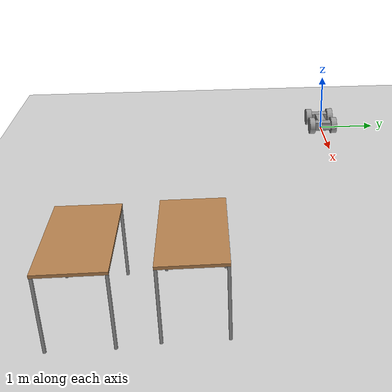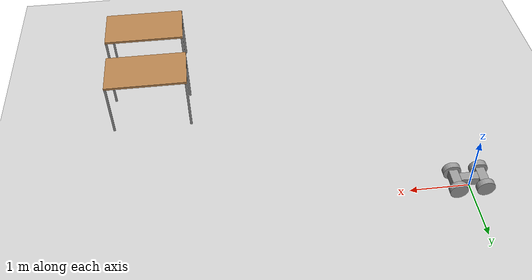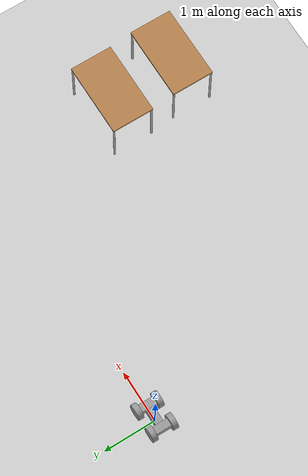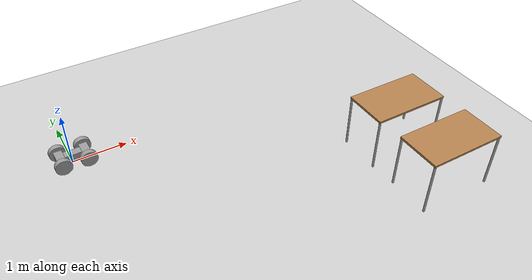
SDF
<sdf version="1.6">
 <world name="default">
  <model name="ground_plane">
   <static>1</static>
   <link name="link">
    <collision name="collision">
     <geometry><plane><normal>0 0 1</normal><size>100 100</size></plane></geometry>
     <surface><friction><ode><mu>100</mu><mu2>50</mu2></ode></friction></surface>
    </collision>
    <visual name="visual">
     <cast_shadows>0</cast_shadows>
     <geometry><plane><normal>0 0 1</normal><size>100 100</size></plane></geometry>
     <material>
      <script><uri>file://media/materials/scripts/gazebo.material</uri><name>Gazebo/Grey</name></script>
     </material>
    </visual>
   </link>
  </model>
  <model name="robot">
   <link name="link_0">
    <pose>-0.225 0 0 0 -0 0</pose>
    <inertial>
     <mass>1</mass>
     <inertia>
      <ixx>0.166667</ixx>
      <ixy>0</ixy>
      <ixz>0</ixz>
      <iyy>0.166667</iyy>
      <iyz>0</iyz>
      <izz>0.166667</izz>
     </inertia>
    </inertial>
    <visual name="visual">
     <geometry><box><size>0.15 0.3 0.15</size></box></geometry>
     <material>
      <lighting>1</lighting>
      <script><uri>file://media/materials/scripts/gazebo.material</uri><name>Gazebo/Grey</name></script>
      <ambient>0.3 0.3 0.3 1</ambient>
      <diffuse>0.7 0.7 0.7 1</diffuse>
      <specular>0.01 0.01 0.01 1</specular>
      <emissive>0 0 0 1</emissive>
      <shader type="vertex"><normal_map>__default__</normal_map></shader>
     </material>
    </visual>
    <collision name="collision">
     <geometry><box><size>0.15 0.3 0.15</size></box></geometry>
     <surface>
      <friction>
       <ode><mu>1</mu><mu2>1</mu2><fdir1>0 0 0</fdir1><slip1>0</slip1><slip2>0</slip2></ode>
       <torsional>
        <coefficient>1</coefficient>
        <patch_radius>0</patch_radius>
        <surface_radius>0</surface_radius>
        <use_patch_radius>1</use_patch_radius>
        <ode><slip>0</slip></ode>
       </torsional>
      </friction>
      <bounce><restitution_coefficient>0</restitution_coefficient><threshold>1e+06</threshold></bounce>
      <contact>
       <collide_without_contact>0</collide_without_contact>
       <collide_without_contact_bitmask>1</collide_without_contact_bitmask>
       <collide_bitmask>1</collide_bitmask>
       <ode>
        <soft_cfm>0</soft_cfm>
        <soft_erp>0.2</soft_erp>
        <kp>1e+13</kp>
        <kd>1</kd>
        <max_vel>0.01</max_vel>
        <min_depth>0</min_depth>
       </ode>
       <bullet>
        <split_impulse>1</split_impulse>
        <split_impulse_penetration_threshold>-0.01</split_impulse_penetration_threshold>
        <soft_cfm>0</soft_cfm>
        <soft_erp>0.2</soft_erp>
        <kp>1e+13</kp>
        <kd>1</kd>
       </bullet>
      </contact>
     </surface>
    </collision>
   </link>
   <link name="link_0_clone">
    <pose>0.225 0 0 0 -0 0</pose>
    <inertial>
     <mass>1</mass>
     <inertia>
      <ixx>0.166667</ixx>
      <ixy>0</ixy>
      <ixz>0</ixz>
      <iyy>0.166667</iyy>
      <iyz>0</iyz>
      <izz>0.166667</izz>
     </inertia>
    </inertial>
    <visual name="visual">
     <geometry><box><size>0.15 0.3 0.15</size></box></geometry>
     <material>
      <lighting>1</lighting>
      <script><uri>file://media/materials/scripts/gazebo.material</uri><name>Gazebo/Grey</name></script>
      <ambient>0.3 0.3 0.3 1</ambient>
      <diffuse>0.7 0.7 0.7 1</diffuse>
      <specular>0.01 0.01 0.01 1</specular>
      <emissive>0 0 0 1</emissive>
      <shader type="vertex"><normal_map>__default__</normal_map></shader>
     </material>
    </visual>
    <collision name="collision">
     <geometry><box><size>0.15 0.3 0.15</size></box></geometry>
     <surface>
      <friction>
       <ode><mu>1</mu><mu2>1</mu2><fdir1>0 0 0</fdir1><slip1>0</slip1><slip2>0</slip2></ode>
       <torsional>
        <coefficient>1</coefficient>
        <patch_radius>0</patch_radius>
        <surface_radius>0</surface_radius>
        <use_patch_radius>1</use_patch_radius>
        <ode><slip>0</slip></ode>
       </torsional>
      </friction>
      <bounce><restitution_coefficient>0</restitution_coefficient><threshold>1e+06</threshold></bounce>
      <contact>
       <collide_without_contact>0</collide_without_contact>
       <collide_without_contact_bitmask>1</collide_without_contact_bitmask>
       <collide_bitmask>1</collide_bitmask>
       <ode>
        <soft_cfm>0</soft_cfm>
        <soft_erp>0.2</soft_erp>
        <kp>1e+13</kp>
        <kd>1</kd>
        <max_vel>0.01</max_vel>
        <min_depth>0</min_depth>
       </ode>
       <bullet>
        <split_impulse>1</split_impulse>
        <split_impulse_penetration_threshold>-0.01</split_impulse_penetration_threshold>
        <soft_cfm>0</soft_cfm>
        <soft_erp>0.2</soft_erp>
        <kp>1e+13</kp>
        <kd>1</kd>
       </bullet>
      </contact>
     </surface>
    </collision>
   </link>
   <link name="link_1">
    <inertial>
     <mass>1</mass>
     <inertia>
      <ixx>0.166667</ixx>
      <ixy>0</ixy>
      <ixz>0</ixz>
      <iyy>0.166667</iyy>
      <iyz>0</iyz>
      <izz>0.166667</izz>
     </inertia>
    </inertial>
    <visual name="visual">
     <geometry><box><size>0.3 0.15 0.15</size></box></geometry>
     <material>
      <lighting>1</lighting>
      <script><uri>file://media/materials/scripts/gazebo.material</uri><name>Gazebo/Grey</name></script>
      <ambient>0.3 0.3 0.3 1</ambient>
      <diffuse>0.7 0.7 0.7 1</diffuse>
      <specular>0.01 0.01 0.01 1</specular>
      <emissive>0 0 0 1</emissive>
      <shader type="vertex"><normal_map>__default__</normal_map></shader>
     </material>
    </visual>
    <collision name="collision">
     <geometry><box><size>0.3 0.15 0.15</size></box></geometry>
     <surface>
      <friction>
       <ode><mu>1</mu><mu2>1</mu2><fdir1>0 0 0</fdir1><slip1>0</slip1><slip2>0</slip2></ode>
       <torsional>
        <coefficient>1</coefficient>
        <patch_radius>0</patch_radius>
        <surface_radius>0</surface_radius>
        <use_patch_radius>1</use_patch_radius>
        <ode><slip>0</slip></ode>
       </torsional>
      </friction>
      <bounce><restitution_coefficient>0</restitution_coefficient><threshold>1e+06</threshold></bounce>
      <contact>
       <collide_without_contact>0</collide_without_contact>
       <collide_without_contact_bitmask>1</collide_without_contact_bitmask>
       <collide_bitmask>1</collide_bitmask>
       <ode>
        <soft_cfm>0</soft_cfm>
        <soft_erp>0.2</soft_erp>
        <kp>1e+13</kp>
        <kd>1</kd>
        <max_vel>0.01</max_vel>
        <min_depth>0</min_depth>
       </ode>
       <bullet>
        <split_impulse>1</split_impulse>
        <split_impulse_penetration_threshold>-0.01</split_impulse_penetration_threshold>
        <soft_cfm>0</soft_cfm>
        <soft_erp>0.2</soft_erp>
        <kp>1e+13</kp>
        <kd>1</kd>
       </bullet>
      </contact>
     </surface>
    </collision>
   </link>
   <link name="link_2">
    <pose>-0.225 -0.200001 0 1.5708 -0 0</pose>
    <inertial>
     <mass>1</mass>
     <inertia><ixx>0.145833</ixx><ixy>0</ixy><ixz>0</ixz><iyy>0.145833</iyy><iyz>0</iyz><izz>0.125</izz></inertia>
    </inertial>
    <visual name="visual">
     <geometry><cylinder><radius>0.15</radius><length>0.1</length></cylinder></geometry>
     <material>
      <lighting>1</lighting>
      <script><uri>file://media/materials/scripts/gazebo.material</uri><name>Gazebo/Grey</name></script>
      <ambient>0.3 0.3 0.3 1</ambient>
      <diffuse>0.7 0.7 0.7 1</diffuse>
      <specular>0.01 0.01 0.01 1</specular>
      <emissive>0 0 0 1</emissive>
      <shader type="vertex"><normal_map>__default__</normal_map></shader>
     </material>
    </visual>
    <collision name="collision">
     <geometry><cylinder><radius>0.15</radius><length>0.1</length></cylinder></geometry>
     <surface>
      <friction>
       <ode><mu>1</mu><mu2>1</mu2><fdir1>0 0 0</fdir1><slip1>0</slip1><slip2>0</slip2></ode>
       <torsional>
        <coefficient>1</coefficient>
        <patch_radius>0</patch_radius>
        <surface_radius>0</surface_radius>
        <use_patch_radius>1</use_patch_radius>
        <ode><slip>0</slip></ode>
       </torsional>
      </friction>
      <bounce><restitution_coefficient>0</restitution_coefficient><threshold>1e+06</threshold></bounce>
      <contact>
       <collide_without_contact>0</collide_without_contact>
       <collide_without_contact_bitmask>1</collide_without_contact_bitmask>
       <collide_bitmask>1</collide_bitmask>
       <ode>
        <soft_cfm>0</soft_cfm>
        <soft_erp>0.2</soft_erp>
        <kp>1e+13</kp>
        <kd>1</kd>
        <max_vel>0.01</max_vel>
        <min_depth>0</min_depth>
       </ode>
       <bullet>
        <split_impulse>1</split_impulse>
        <split_impulse_penetration_threshold>-0.01</split_impulse_penetration_threshold>
        <soft_cfm>0</soft_cfm>
        <soft_erp>0.2</soft_erp>
        <kp>1e+13</kp>
        <kd>1</kd>
       </bullet>
      </contact>
     </surface>
    </collision>
   </link>
   <link name="link_2_clone">
    <pose>0.225 -0.200001 0 1.5708 -0 0</pose>
    <inertial>
     <mass>1</mass>
     <inertia><ixx>0.145833</ixx><ixy>0</ixy><ixz>0</ixz><iyy>0.145833</iyy><iyz>0</iyz><izz>0.125</izz></inertia>
    </inertial>
    <visual name="visual">
     <geometry><cylinder><radius>0.15</radius><length>0.1</length></cylinder></geometry>
     <material>
      <lighting>1</lighting>
      <script><uri>file://media/materials/scripts/gazebo.material</uri><name>Gazebo/Grey</name></script>
      <ambient>0.3 0.3 0.3 1</ambient>
      <diffuse>0.7 0.7 0.7 1</diffuse>
      <specular>0.01 0.01 0.01 1</specular>
      <emissive>0 0 0 1</emissive>
      <shader type="vertex"><normal_map>__default__</normal_map></shader>
     </material>
    </visual>
    <collision name="collision">
     <geometry><cylinder><radius>0.15</radius><length>0.1</length></cylinder></geometry>
     <surface>
      <friction>
       <ode><mu>1</mu><mu2>1</mu2><fdir1>0 0 0</fdir1><slip1>0</slip1><slip2>0</slip2></ode>
       <torsional>
        <coefficient>1</coefficient>
        <patch_radius>0</patch_radius>
        <surface_radius>0</surface_radius>
        <use_patch_radius>1</use_patch_radius>
        <ode><slip>0</slip></ode>
       </torsional>
      </friction>
      <bounce><restitution_coefficient>0</restitution_coefficient><threshold>1e+06</threshold></bounce>
      <contact>
       <collide_without_contact>0</collide_without_contact>
       <collide_without_contact_bitmask>1</collide_without_contact_bitmask>
       <collide_bitmask>1</collide_bitmask>
       <ode>
        <soft_cfm>0</soft_cfm>
        <soft_erp>0.2</soft_erp>
        <kp>1e+13</kp>
        <kd>1</kd>
        <max_vel>0.01</max_vel>
        <min_depth>0</min_depth>
       </ode>
       <bullet>
        <split_impulse>1</split_impulse>
        <split_impulse_penetration_threshold>-0.01</split_impulse_penetration_threshold>
        <soft_cfm>0</soft_cfm>
        <soft_erp>0.2</soft_erp>
        <kp>1e+13</kp>
        <kd>1</kd>
       </bullet>
      </contact>
     </surface>
    </collision>
   </link>
   <link name="link_2_clone_0">
    <pose>-0.225 0.200001 0 1.5708 -0 0</pose>
    <inertial>
     <mass>1</mass>
     <inertia><ixx>0.145833</ixx><ixy>0</ixy><ixz>0</ixz><iyy>0.145833</iyy><iyz>0</iyz><izz>0.125</izz></inertia>
    </inertial>
    <visual name="visual">
     <geometry><cylinder><radius>0.15</radius><length>0.1</length></cylinder></geometry>
     <material>
      <lighting>1</lighting>
      <script><uri>file://media/materials/scripts/gazebo.material</uri><name>Gazebo/Grey</name></script>
      <ambient>0.3 0.3 0.3 1</ambient>
      <diffuse>0.7 0.7 0.7 1</diffuse>
      <specular>0.01 0.01 0.01 1</specular>
      <emissive>0 0 0 1</emissive>
      <shader type="vertex"><normal_map>__default__</normal_map></shader>
     </material>
    </visual>
    <collision name="collision">
     <geometry><cylinder><radius>0.15</radius><length>0.1</length></cylinder></geometry>
     <surface>
      <friction>
       <ode><mu>1</mu><mu2>1</mu2><fdir1>0 0 0</fdir1><slip1>0</slip1><slip2>0</slip2></ode>
       <torsional>
        <coefficient>1</coefficient>
        <patch_radius>0</patch_radius>
        <surface_radius>0</surface_radius>
        <use_patch_radius>1</use_patch_radius>
        <ode><slip>0</slip></ode>
       </torsional>
      </friction>
      <bounce><restitution_coefficient>0</restitution_coefficient><threshold>1e+06</threshold></bounce>
      <contact>
       <collide_without_contact>0</collide_without_contact>
       <collide_without_contact_bitmask>1</collide_without_contact_bitmask>
       <collide_bitmask>1</collide_bitmask>
       <ode>
        <soft_cfm>0</soft_cfm>
        <soft_erp>0.2</soft_erp>
        <kp>1e+13</kp>
        <kd>1</kd>
        <max_vel>0.01</max_vel>
        <min_depth>0</min_depth>
       </ode>
       <bullet>
        <split_impulse>1</split_impulse>
        <split_impulse_penetration_threshold>-0.01</split_impulse_penetration_threshold>
        <soft_cfm>0</soft_cfm>
        <soft_erp>0.2</soft_erp>
        <kp>1e+13</kp>
        <kd>1</kd>
       </bullet>
      </contact>
     </surface>
    </collision>
   </link>
   <link name="link_2_clone_1">
    <pose>0.225 0.200001 0 1.5708 -0 0</pose>
    <inertial>
     <mass>1</mass>
     <inertia><ixx>0.145833</ixx><ixy>0</ixy><ixz>0</ixz><iyy>0.145833</iyy><iyz>0</iyz><izz>0.125</izz></inertia>
    </inertial>
    <visual name="visual">
     <geometry><cylinder><radius>0.15</radius><length>0.1</length></cylinder></geometry>
     <material>
      <lighting>1</lighting>
      <script><uri>file://media/materials/scripts/gazebo.material</uri><name>Gazebo/Grey</name></script>
      <ambient>0.3 0.3 0.3 1</ambient>
      <diffuse>0.7 0.7 0.7 1</diffuse>
      <specular>0.01 0.01 0.01 1</specular>
      <emissive>0 0 0 1</emissive>
      <shader type="vertex"><normal_map>__default__</normal_map></shader>
     </material>
    </visual>
    <collision name="collision">
     <geometry><cylinder><radius>0.15</radius><length>0.1</length></cylinder></geometry>
     <surface>
      <friction>
       <ode><mu>1</mu><mu2>1</mu2><fdir1>0 0 0</fdir1><slip1>0</slip1><slip2>0</slip2></ode>
       <torsional>
        <coefficient>1</coefficient>
        <patch_radius>0</patch_radius>
        <surface_radius>0</surface_radius>
        <use_patch_radius>1</use_patch_radius>
        <ode><slip>0</slip></ode>
       </torsional>
      </friction>
      <bounce><restitution_coefficient>0</restitution_coefficient><threshold>1e+06</threshold></bounce>
      <contact>
       <collide_without_contact>0</collide_without_contact>
       <collide_without_contact_bitmask>1</collide_without_contact_bitmask>
       <collide_bitmask>1</collide_bitmask>
       <ode>
        <soft_cfm>0</soft_cfm>
        <soft_erp>0.2</soft_erp>
        <kp>1e+13</kp>
        <kd>1</kd>
        <max_vel>0.01</max_vel>
        <min_depth>0</min_depth>
       </ode>
       <bullet>
        <split_impulse>1</split_impulse>
        <split_impulse_penetration_threshold>-0.01</split_impulse_penetration_threshold>
        <soft_cfm>0</soft_cfm>
        <soft_erp>0.2</soft_erp>
        <kp>1e+13</kp>
        <kd>1</kd>
       </bullet>
      </contact>
     </surface>
    </collision>
   </link>
   <joint name="link_0_JOINT_1" type="fixed">
    <parent>link_0</parent>
    <child>link_1</child>
    <physics>
     <ode><limit><cfm>0</cfm><erp>0.2</erp></limit><suspension><cfm>0</cfm><erp>0.2</erp></suspension></ode>
    </physics>
   </joint>
   <joint name="link_0_JOINT_3" type="revolute">
    <parent>link_0</parent>
    <child>link_2</child>
    <axis>
     <xyz>1 0 0</xyz>
     <use_parent_model_frame>0</use_parent_model_frame>
     <limit>
      <lower>-1.79769e+308</lower>
      <upper>1.79769e+308</upper>
      <effort>-1</effort>
      <velocity>-1</velocity>
     </limit>
     <dynamics>
      <spring_reference>0</spring_reference>
      <spring_stiffness>0</spring_stiffness>
      <damping>0</damping>
     </dynamics>
    </axis>
    <physics>
     <ode><limit><cfm>0</cfm><erp>0.2</erp></limit><suspension><cfm>0</cfm><erp>0.2</erp></suspension></ode>
    </physics>
   </joint>
   <joint name="link_0_JOINT_5" type="revolute">
    <parent>link_0</parent>
    <child>link_2_clone_0</child>
    <axis>
     <xyz>1 0 0</xyz>
     <use_parent_model_frame>0</use_parent_model_frame>
     <limit>
      <lower>-1.79769e+308</lower>
      <upper>1.79769e+308</upper>
      <effort>-1</effort>
      <velocity>-1</velocity>
     </limit>
     <dynamics>
      <spring_reference>0</spring_reference>
      <spring_stiffness>0</spring_stiffness>
      <damping>0</damping>
     </dynamics>
    </axis>
    <physics>
     <ode><limit><cfm>0</cfm><erp>0.2</erp></limit><suspension><cfm>0</cfm><erp>0.2</erp></suspension></ode>
    </physics>
   </joint>
   <joint name="link_0_clone_JOINT_4" type="revolute">
    <parent>link_0_clone</parent>
    <child>link_2_clone</child>
    <axis>
     <xyz>1 0 0</xyz>
     <use_parent_model_frame>0</use_parent_model_frame>
     <limit>
      <lower>-1.79769e+308</lower>
      <upper>1.79769e+308</upper>
      <effort>-1</effort>
      <velocity>-1</velocity>
     </limit>
     <dynamics>
      <spring_reference>0</spring_reference>
      <spring_stiffness>0</spring_stiffness>
      <damping>0</damping>
     </dynamics>
    </axis>
    <physics>
     <ode><limit><cfm>0</cfm><erp>0.2</erp></limit><suspension><cfm>0</cfm><erp>0.2</erp></suspension></ode>
    </physics>
   </joint>
   <joint name="link_0_clone_JOINT_6" type="revolute">
    <parent>link_0_clone</parent>
    <child>link_2_clone_1</child>
    <axis>
     <xyz>1 0 0</xyz>
     <use_parent_model_frame>0</use_parent_model_frame>
     <limit>
      <lower>-1.79769e+308</lower>
      <upper>1.79769e+308</upper>
      <effort>-1</effort>
      <velocity>-1</velocity>
     </limit>
     <dynamics>
      <spring_reference>0</spring_reference>
      <spring_stiffness>0</spring_stiffness>
      <damping>0</damping>
     </dynamics>
    </axis>
    <physics>
     <ode><limit><cfm>0</cfm><erp>0.2</erp></limit><suspension><cfm>0</cfm><erp>0.2</erp></suspension></ode>
    </physics>
   </joint>
   <joint name="link_1_JOINT_2" type="fixed">
    <parent>link_1</parent>
    <child>link_0_clone</child>
    <physics>
     <ode><limit><cfm>0</cfm><erp>0.2</erp></limit><suspension><cfm>0</cfm><erp>0.2</erp></suspension></ode>
    </physics>
   </joint>
   <static>0</static>
   <pose>0.034222 -0.010109 0.15 1e-06 -0 -0.000384</pose>
  </model>
  <model name="table">
   <static>0</static>
   <link name="link">
    <collision name="surface">
     <pose>0 0 1 0 -0 0</pose>
     <geometry><box><size>1.5 0.8 0.03</size></box></geometry>
     <surface><friction><ode><mu>0.6</mu><mu2>0.6</mu2></ode></friction></surface>
    </collision>
    <visual name="visual1">
     <pose>0 0 1 0 -0 0</pose>
     <geometry><box><size>1.4 0.8 0.04</size></box></geometry>
     <material>
      <script><uri>file://media/materials/scripts/gazebo.material</uri><name>Gazebo/Wood</name></script>
     </material>
    </visual>
    <collision name="front_left_leg">
     <pose>0.68 0.38 0.5 0 -0 0</pose>
     <geometry><cylinder><radius>0.02</radius><length>1</length></cylinder></geometry>
    </collision>
    <visual name="front_left_leg">
     <pose>0.68 0.38 0.5 0 -0 0</pose>
     <geometry><cylinder><radius>0.02</radius><length>1</length></cylinder></geometry>
     <material>
      <script><uri>file://media/materials/scripts/gazebo.material</uri><name>Gazebo/Grey</name></script>
     </material>
    </visual>
    <collision name="front_right_leg">
     <pose>0.68 -0.38 0.5 0 -0 0</pose>
     <geometry><cylinder><radius>0.02</radius><length>1</length></cylinder></geometry>
    </collision>
    <visual name="front_right_leg">
     <pose>0.68 -0.38 0.5 0 -0 0</pose>
     <geometry><cylinder><radius>0.02</radius><length>1</length></cylinder></geometry>
     <material>
      <script><uri>file://media/materials/scripts/gazebo.material</uri><name>Gazebo/Grey</name></script>
     </material>
    </visual>
    <collision name="back_right_leg">
     <pose>-0.68 -0.38 0.5 0 -0 0</pose>
     <geometry><cylinder><radius>0.02</radius><length>1</length></cylinder></geometry>
    </collision>
    <visual name="back_right_leg">
     <pose>-0.68 -0.38 0.5 0 -0 0</pose>
     <geometry><cylinder><radius>0.02</radius><length>1</length></cylinder></geometry>
     <material>
      <script><uri>file://media/materials/scripts/gazebo.material</uri><name>Gazebo/Grey</name></script>
     </material>
    </visual>
    <collision name="back_left_leg">
     <pose>-0.68 0.38 0.5 0 -0 0</pose>
     <geometry><cylinder><radius>0.02</radius><length>1</length></cylinder></geometry>
    </collision>
    <visual name="back_left_leg">
     <pose>-0.68 0.38 0.5 0 -0 0</pose>
     <geometry><cylinder><radius>0.02</radius><length>1</length></cylinder></geometry>
     <material>
      <script><uri>file://media/materials/scripts/gazebo.material</uri><name>Gazebo/Grey</name></script>
     </material>
    </visual>
    <inertial>
     <inertia><ixx>1</ixx><ixy>0</ixy><ixz>0</ixz><iyy>1</iyy><iyz>0</iyz><izz>1</izz></inertia>
     <mass>1</mass>
    </inertial>
   </link>
   <pose>5.18685 -2.37774 0 0 -0 0</pose>
  </model>
  <model name="table_0">
   <static>0</static>
   <link name="link">
    <collision name="surface">
     <pose>0 0 1 0 -0 0</pose>
     <geometry><box><size>1.5 0.8 0.03</size></box></geometry>
     <surface><friction><ode><mu>0.6</mu><mu2>0.6</mu2></ode></friction></surface>
    </collision>
    <visual name="visual1">
     <pose>0 0 1 0 -0 0</pose>
     <geometry><box><size>1.4 0.8 0.04</size></box></geometry>
     <material>
      <script><uri>file://media/materials/scripts/gazebo.material</uri><name>Gazebo/Wood</name></script>
     </material>
    </visual>
    <collision name="front_left_leg">
     <pose>0.68 0.38 0.5 0 -0 0</pose>
     <geometry><cylinder><radius>0.02</radius><length>1</length></cylinder></geometry>
    </collision>
    <visual name="front_left_leg">
     <pose>0.68 0.38 0.5 0 -0 0</pose>
     <geometry><cylinder><radius>0.02</radius><length>1</length></cylinder></geometry>
     <material>
      <script><uri>file://media/materials/scripts/gazebo.material</uri><name>Gazebo/Grey</name></script>
     </material>
    </visual>
    <collision name="front_right_leg">
     <pose>0.68 -0.38 0.5 0 -0 0</pose>
     <geometry><cylinder><radius>0.02</radius><length>1</length></cylinder></geometry>
    </collision>
    <visual name="front_right_leg">
     <pose>0.68 -0.38 0.5 0 -0 0</pose>
     <geometry><cylinder><radius>0.02</radius><length>1</length></cylinder></geometry>
     <material>
      <script><uri>file://media/materials/scripts/gazebo.material</uri><name>Gazebo/Grey</name></script>
     </material>
    </visual>
    <collision name="back_right_leg">
     <pose>-0.68 -0.38 0.5 0 -0 0</pose>
     <geometry><cylinder><radius>0.02</radius><length>1</length></cylinder></geometry>
    </collision>
    <visual name="back_right_leg">
     <pose>-0.68 -0.38 0.5 0 -0 0</pose>
     <geometry><cylinder><radius>0.02</radius><length>1</length></cylinder></geometry>
     <material>
      <script><uri>file://media/materials/scripts/gazebo.material</uri><name>Gazebo/Grey</name></script>
     </material>
    </visual>
    <collision name="back_left_leg">
     <pose>-0.68 0.38 0.5 0 -0 0</pose>
     <geometry><cylinder><radius>0.02</radius><length>1</length></cylinder></geometry>
    </collision>
    <visual name="back_left_leg">
     <pose>-0.68 0.38 0.5 0 -0 0</pose>
     <geometry><cylinder><radius>0.02</radius><length>1</length></cylinder></geometry>
     <material>
      <script><uri>file://media/materials/scripts/gazebo.material</uri><name>Gazebo/Grey</name></script>
     </material>
    </visual>
    <inertial>
     <inertia><ixx>1</ixx><ixy>0</ixy><ixz>0</ixz><iyy>1</iyy><iyz>0</iyz><izz>1</izz></inertia>
     <mass>1</mass>
    </inertial>
   </link>
   <pose>5.2339 -3.62225 0 0 -0 0</pose>
  </model>
 </world>
</sdf>
